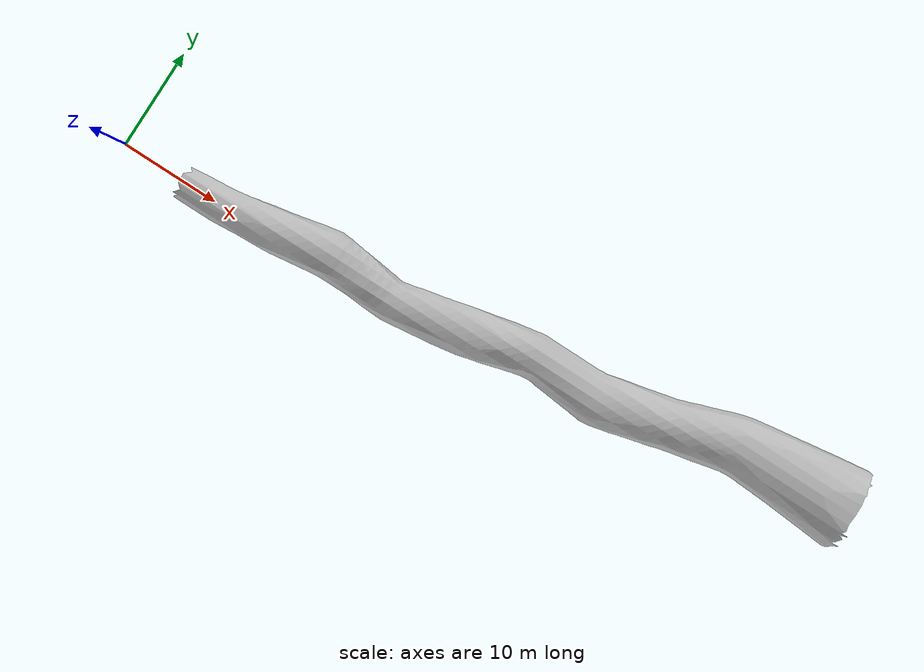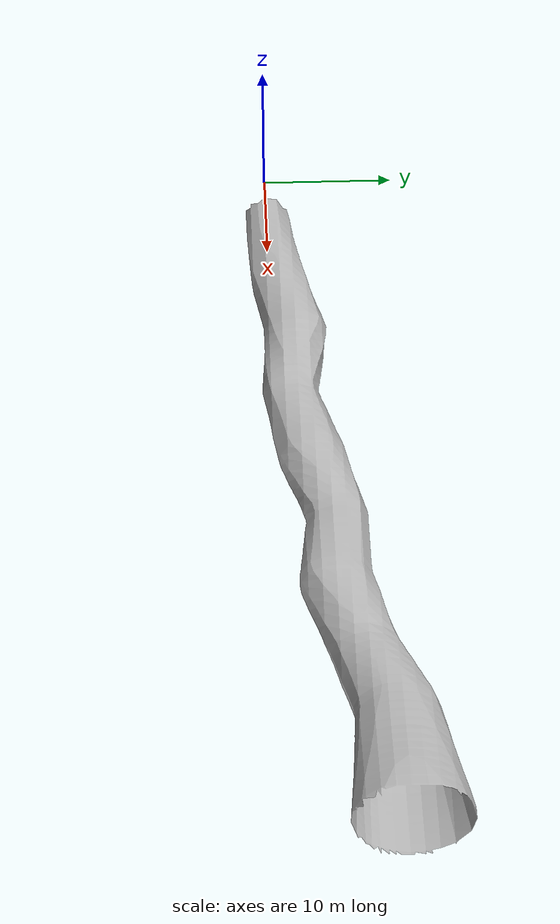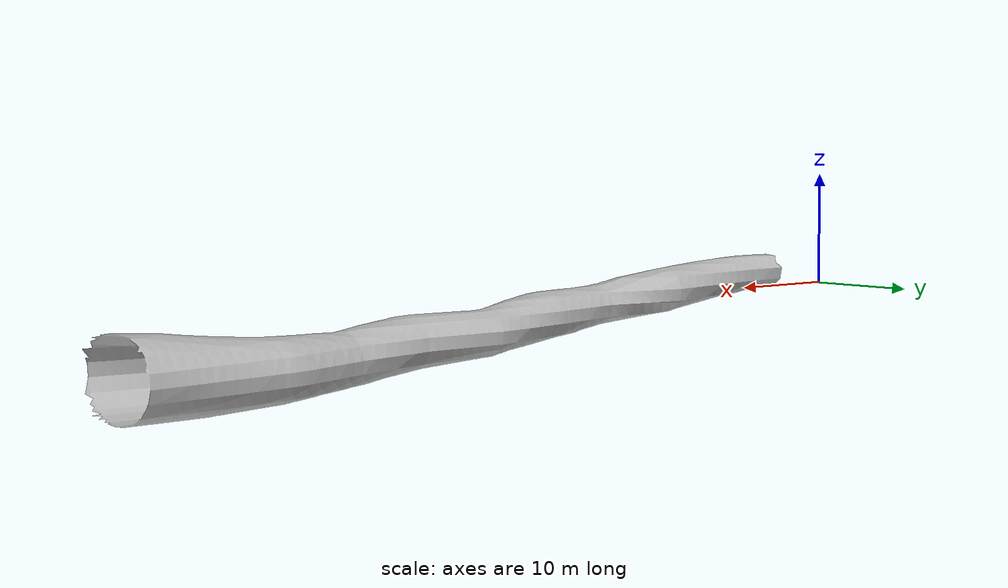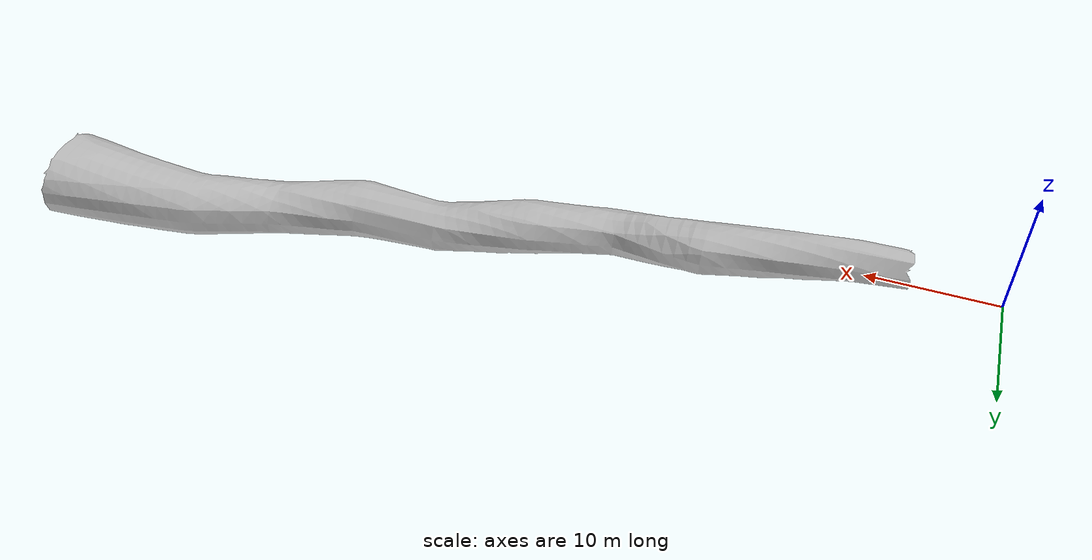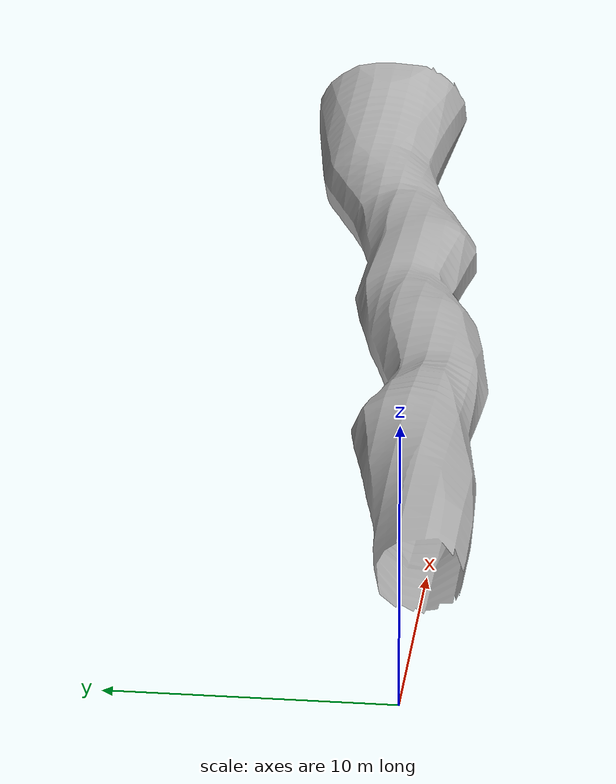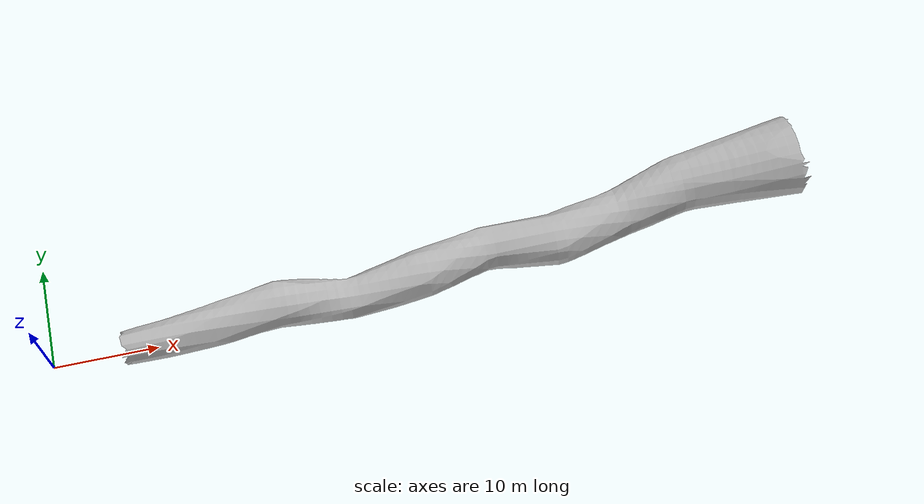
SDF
<?xml version='1.0' encoding='utf-8'?>
<sdf version="1.12">
  <model name="escape_tunnel_shell">
    <static>true</static>
    <link name="structure_link">
      <visual name="structure_visual">
        <geometry>
          <mesh>
            <uri>escape_tunnel_shell.obj</uri>
          </mesh>
        </geometry>
      </visual>
      <collision name="structure_collision">
        <geometry>
          <mesh>
            <uri>escape_tunnel_shell.obj</uri>
          </mesh>
        </geometry>
      </collision>
    </link>
  </model>
</sdf>
